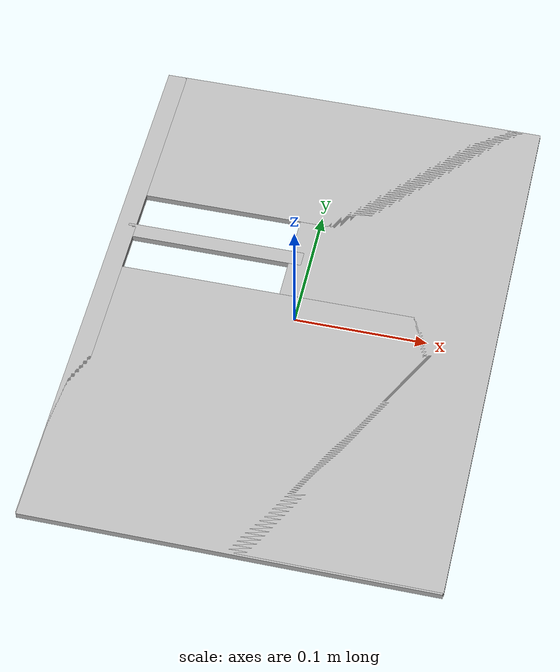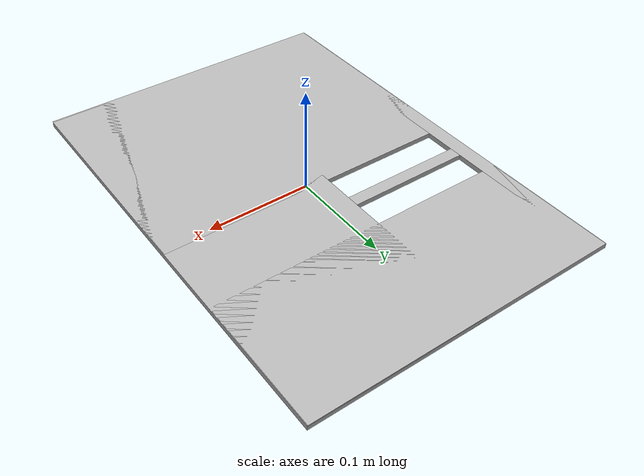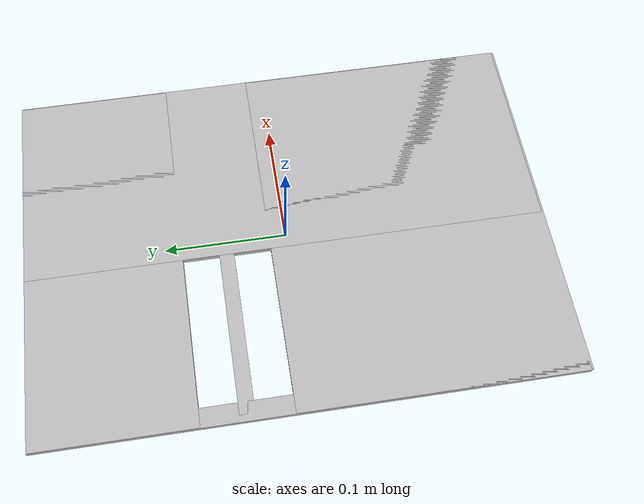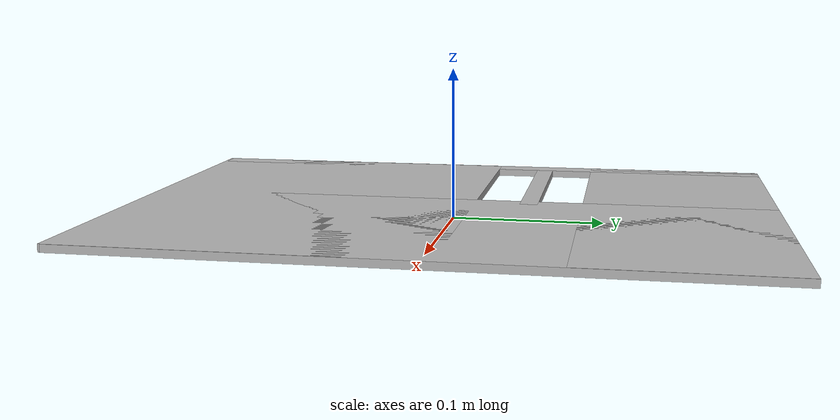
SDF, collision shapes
<?xml version="1.0" ?>
<sdf version="1.9">
  <model name="Task Board Base">
    <link name="base_link">
      <visual name="base_visual">
        <geometry>
          <mesh>
            <uri>base_visual.glb</uri>
          </mesh>
        </geometry>
      </visual>
      <collision name="v1015083001_collider_box_left">
        <pose>0.0 -0.10 0.0075 0.0 0.0 -0.0</pose>
        <geometry>
          <box>
            <size>0.3 0.228 0.005</size>
          </box>
        </geometry>
      </collision>
      <collision name="v1015083001_collider_right">
        <pose>0.0 0.149 0.0075 0.0 0.0 -0.0</pose>
        <geometry>
          <box>
            <size>0.3 0.127 0.005</size>
          </box>
        </geometry>
      </collision>
      <collision name="v1015083001_collider_mid">
        <pose>-0.075 0.05 0.0075 0.0 0.0 -0.0</pose>
        <geometry>
          <box>
            <size>0.14 0.012 0.005</size>
          </box>
        </geometry>
      </collision>
      <collision name="v1015083001_collider_bottom">
        <pose>0.068 0.0 0.0075 0.0 0.0 -0.0</pose>
        <geometry>
          <box>
            <size>0.165 0.425 0.005</size>
          </box>
        </geometry>
      </collision>
      <collision name="v1015083001_collider_top">
        <pose>-0.143 0.0 0.0075 0.0 0.0 -0.0</pose>
        <geometry>
          <box>
            <size>0.015 0.425 0.005</size>
          </box>
        </geometry>
      </collision>
    </link>
  </model>
</sdf>
